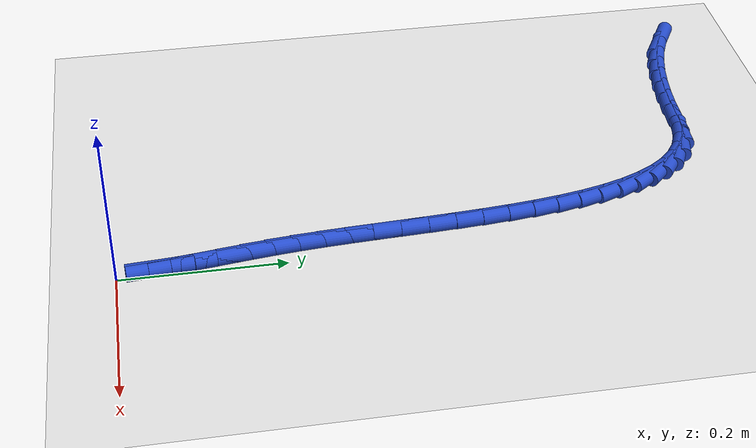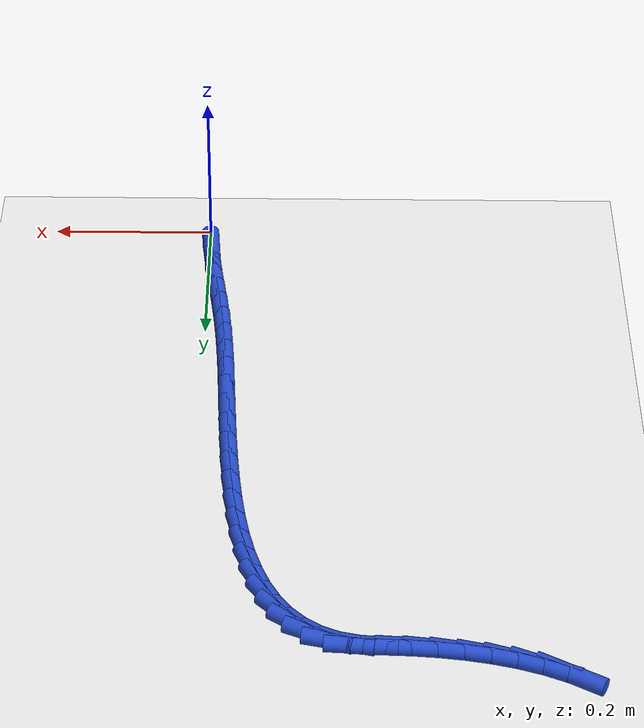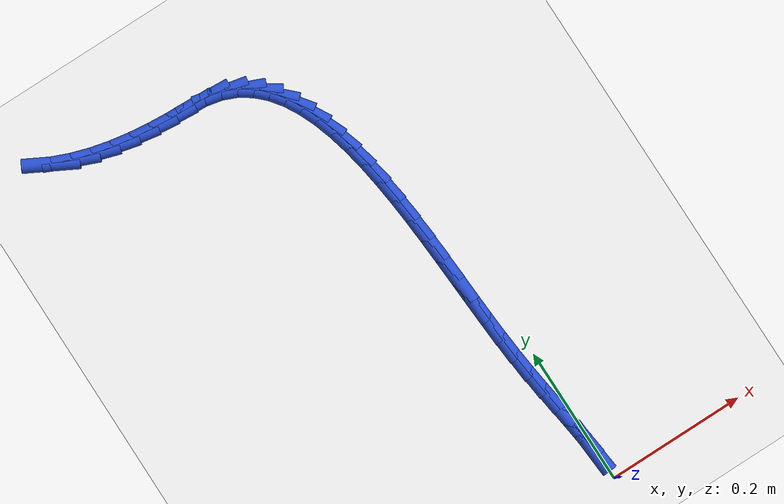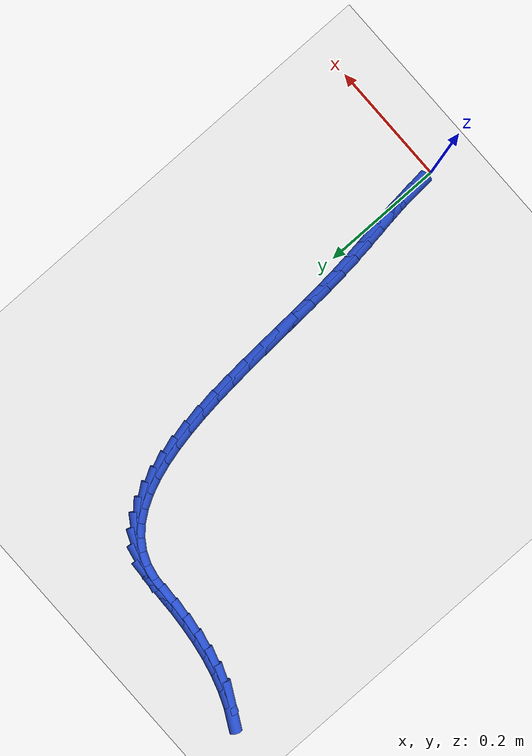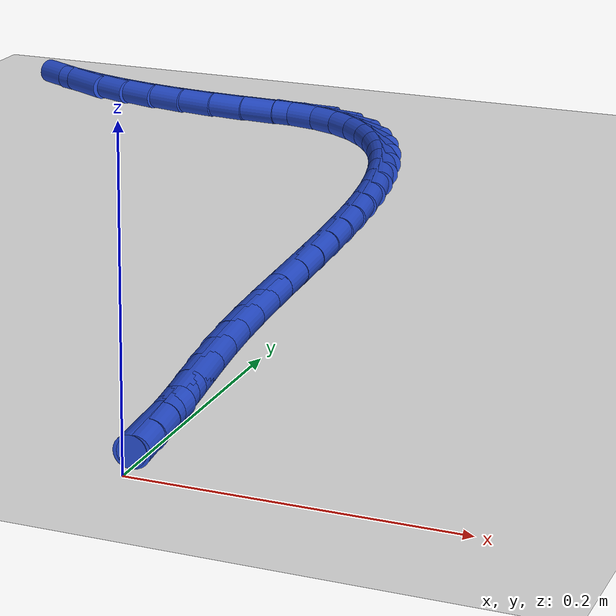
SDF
<sdf version="1.6">
 <world name="default">
  <model name="ground_plane">
   <static>1</static>
   <link name="link">
    <collision name="collision">
     <geometry><plane><normal>0 0 1</normal><size>100 100</size></plane></geometry>
     <surface><friction><ode><mu>100</mu><mu2>50</mu2></ode></friction></surface>
    </collision>
    <visual name="visual">
     <cast_shadows>0</cast_shadows>
     <geometry><plane><normal>0 0 1</normal><size>100 100</size></plane></geometry>
     <material>
      <script><uri>file://media/materials/scripts/gazebo.material</uri><name>Gazebo/WhiteGlow</name></script>
     </material>
    </visual>
   </link>
  </model>
  <model name="line">
   <link name="link_2">
    <pose>-0.0029428397312707944 0.051170829451481735 0.01 0 1.57 -1.4622567356824654</pose>
    <collision name="collision">
     <geometry><cylinder><radius>0.01</radius><length>0.08</length></cylinder></geometry>
    </collision>
    <visual name="visual">
     <material>
      <script><name>Gazebo/Blue</name><uri>file://media/materials/scripts/gazebo.material</uri></script>
     </material>
     <geometry><cylinder><radius>0.01</radius><length>0.08</length></cylinder></geometry>
    </visual>
   </link>
   <link name="link_3">
    <pose>-0.005736424107714438 0.0768076082786417 0.01 0 1.57 -1.4423001634129822</pose>
    <collision name="collision">
     <geometry><cylinder><radius>0.01</radius><length>0.08</length></cylinder></geometry>
    </collision>
    <visual name="visual">
     <material>
      <script><name>Gazebo/Blue</name><uri>file://media/materials/scripts/gazebo.material</uri></script>
     </material>
     <geometry><cylinder><radius>0.01</radius><length>0.08</length></cylinder></geometry>
    </visual>
   </link>
   <link name="link_4">
    <pose>-0.009090706431973608 0.10276792286182596 0.01 0 1.57 -1.4330216142800165</pose>
    <collision name="collision">
     <geometry><cylinder><radius>0.01</radius><length>0.08</length></cylinder></geometry>
    </collision>
    <visual name="visual">
     <material>
      <script><name>Gazebo/Blue</name><uri>file://media/materials/scripts/gazebo.material</uri></script>
     </material>
     <geometry><cylinder><radius>0.01</radius><length>0.08</length></cylinder></geometry>
    </visual>
   </link>
   <link name="link_5">
    <pose>-0.012765127909505838 0.12926874296734314 0.01 0 1.57 -1.4339376347425286</pose>
    <collision name="collision">
     <geometry><cylinder><radius>0.01</radius><length>0.08</length></cylinder></geometry>
    </collision>
    <visual name="visual">
     <material>
      <script><name>Gazebo/Blue</name><uri>file://media/materials/scripts/gazebo.material</uri></script>
     </material>
     <geometry><cylinder><radius>0.01</radius><length>0.08</length></cylinder></geometry>
    </visual>
   </link>
   <link name="link_6">
    <pose>-0.01651912974576864 0.15652703836150186 0.01 0 1.57 -1.4442123722095777</pose>
    <collision name="collision">
     <geometry><cylinder><radius>0.01</radius><length>0.08</length></cylinder></geometry>
    </collision>
    <visual name="visual">
     <material>
      <script><name>Gazebo/Blue</name><uri>file://media/materials/scripts/gazebo.material</uri></script>
     </material>
     <geometry><cylinder><radius>0.01</radius><length>0.08</length></cylinder></geometry>
    </visual>
   </link>
   <link name="link_7">
    <pose>-0.02011215314621956 0.1847597788106109 0.01 0 1.57 -1.4627538627626657</pose>
    <collision name="collision">
     <geometry><cylinder><radius>0.01</radius><length>0.08</length></cylinder></geometry>
    </collision>
    <visual name="visual">
     <material>
      <script><name>Gazebo/Blue</name><uri>file://media/materials/scripts/gazebo.material</uri></script>
     </material>
     <geometry><cylinder><radius>0.01</radius><length>0.08</length></cylinder></geometry>
    </visual>
   </link>
   <link name="link_8">
    <pose>-0.023303639316316117 0.21418393408097874 0.01 0 1.57 -1.4860196869104796</pose>
    <collision name="collision">
     <geometry><cylinder><radius>0.01</radius><length>0.08</length></cylinder></geometry>
    </collision>
    <visual name="visual">
     <material>
      <script><name>Gazebo/Blue</name><uri>file://media/materials/scripts/gazebo.material</uri></script>
     </material>
     <geometry><cylinder><radius>0.01</radius><length>0.08</length></cylinder></geometry>
    </visual>
   </link>
   <link name="link_9">
    <pose>-0.025917331742210545 0.24494037621948112 0.01 0 1.57 -1.503880707562586</pose>
    <collision name="collision">
     <geometry><cylinder><radius>0.01</radius><length>0.08</length></cylinder></geometry>
    </collision>
    <visual name="visual">
     <material>
      <script><name>Gazebo/Blue</name><uri>file://media/materials/scripts/gazebo.material</uri></script>
     </material>
     <geometry><cylinder><radius>0.01</radius><length>0.08</length></cylinder></geometry>
    </visual>
   </link>
   <link name="link_10">
    <pose>-0.028055157753665155 0.27684076412762615 0.01 0 1.57 -1.5147286217173899</pose>
    <collision name="collision">
     <geometry><cylinder><radius>0.01</radius><length>0.08</length></cylinder></geometry>
    </collision>
    <visual name="visual">
     <material>
      <script><name>Gazebo/Blue</name><uri>file://media/materials/scripts/gazebo.material</uri></script>
     </material>
     <geometry><cylinder><radius>0.01</radius><length>0.08</length></cylinder></geometry>
    </visual>
   </link>
   <link name="link_11">
    <pose>-0.02989425498056609 0.30960775003009056 0.01 0 1.57 -1.5193519140829248</pose>
    <collision name="collision">
     <geometry><cylinder><radius>0.01</radius><length>0.08</length></cylinder></geometry>
    </collision>
    <visual name="visual">
     <material>
      <script><name>Gazebo/Blue</name><uri>file://media/materials/scripts/gazebo.material</uri></script>
     </material>
     <geometry><cylinder><radius>0.01</radius><length>0.08</length></cylinder></geometry>
    </visual>
   </link>
   <link name="link_12">
    <pose>-0.03161176229347641 0.34296398468328787 0.01 0 1.57 -1.5181821880731876</pose>
    <collision name="collision">
     <geometry><cylinder><radius>0.01</radius><length>0.08</length></cylinder></geometry>
    </collision>
    <visual name="visual">
     <material>
      <script><name>Gazebo/Blue</name><uri>file://media/materials/scripts/gazebo.material</uri></script>
     </material>
     <geometry><cylinder><radius>0.01</radius><length>0.08</length></cylinder></geometry>
    </visual>
   </link>
   <link name="link_13">
    <pose>-0.03338481856295926 0.37663211884363157 0.01 0 1.57 -1.5113535500675843</pose>
    <collision name="collision">
     <geometry><cylinder><radius>0.01</radius><length>0.08</length></cylinder></geometry>
    </collision>
    <visual name="visual">
     <material>
      <script><name>Gazebo/Blue</name><uri>file://media/materials/scripts/gazebo.material</uri></script>
     </material>
     <geometry><cylinder><radius>0.01</radius><length>0.08</length></cylinder></geometry>
    </visual>
   </link>
   <link name="link_14">
    <pose>-0.03539056265957769 0.410334803267535 0.01 0 1.57 -1.4987283170580756</pose>
    <collision name="collision">
     <geometry><cylinder><radius>0.01</radius><length>0.08</length></cylinder></geometry>
    </collision>
    <visual name="visual">
     <material>
      <script><name>Gazebo/Blue</name><uri>file://media/materials/scripts/gazebo.material</uri></script>
     </material>
     <geometry><cylinder><radius>0.01</radius><length>0.08</length></cylinder></geometry>
    </visual>
   </link>
   <link name="link_15">
    <pose>-0.037806133453894816 0.443794688711412 0.01 0 1.57 -1.479895122322922</pose>
    <collision name="collision">
     <geometry><cylinder><radius>0.01</radius><length>0.08</length></cylinder></geometry>
    </collision>
    <visual name="visual">
     <material>
      <script><name>Gazebo/Blue</name><uri>file://media/materials/scripts/gazebo.material</uri></script>
     </material>
     <geometry><cylinder><radius>0.01</radius><length>0.08</length></cylinder></geometry>
    </visual>
   </link>
   <link name="link_16">
    <pose>-0.04080866981647373 0.47673442593167575 0.01 0 1.57 -1.4541417482149968</pose>
    <collision name="collision">
     <geometry><cylinder><radius>0.01</radius><length>0.08</length></cylinder></geometry>
    </collision>
    <visual name="visual">
     <material>
      <script><name>Gazebo/Blue</name><uri>file://media/materials/scripts/gazebo.material</uri></script>
     </material>
     <geometry><cylinder><radius>0.01</radius><length>0.08</length></cylinder></geometry>
    </visual>
   </link>
   <link name="link_17">
    <pose>-0.04457531061787749 0.5088766656847398 0.01 0 1.57 -1.4204027675378201</pose>
    <collision name="collision">
     <geometry><cylinder><radius>0.01</radius><length>0.08</length></cylinder></geometry>
    </collision>
    <visual name="visual">
     <material>
      <script><name>Gazebo/Blue</name><uri>file://media/materials/scripts/gazebo.material</uri></script>
     </material>
     <geometry><cylinder><radius>0.01</radius><length>0.08</length></cylinder></geometry>
    </visual>
   </link>
   <link name="link_18">
    <pose>-0.04928319472866926 0.5399440587270177 0.01 0 1.57 -1.3771822069479396</pose>
    <collision name="collision">
     <geometry><cylinder><radius>0.01</radius><length>0.08</length></cylinder></geometry>
    </collision>
    <visual name="visual">
     <material>
      <script><name>Gazebo/Blue</name><uri>file://media/materials/scripts/gazebo.material</uri></script>
     </material>
     <geometry><cylinder><radius>0.01</radius><length>0.08</length></cylinder></geometry>
    </visual>
   </link>
   <link name="link_19">
    <pose>-0.05510946101941204 0.5696592558149229 0.01 0 1.57 -1.3224568634582443</pose>
    <collision name="collision">
     <geometry><cylinder><radius>0.01</radius><length>0.08</length></cylinder></geometry>
    </collision>
    <visual name="visual">
     <material>
      <script><name>Gazebo/Blue</name><uri>file://media/materials/scripts/gazebo.material</uri></script>
     </material>
     <geometry><cylinder><radius>0.01</radius><length>0.08</length></cylinder></geometry>
    </visual>
   </link>
   <link name="link_20">
    <pose>-0.06223124836066901 0.597744907704869 0.01 0 1.57 -1.2535839301073037</pose>
    <collision name="collision">
     <geometry><cylinder><radius>0.01</radius><length>0.08</length></cylinder></geometry>
    </collision>
    <visual name="visual">
     <material>
      <script><name>Gazebo/Blue</name><uri>file://media/materials/scripts/gazebo.material</uri></script>
     </material>
     <geometry><cylinder><radius>0.01</radius><length>0.08</length></cylinder></geometry>
    </visual>
   </link>
   <link name="link_21">
    <pose>-0.07082569562300321 0.6239236651532694 0.01 0 1.57 -1.1672826308279138</pose>
    <collision name="collision">
     <geometry><cylinder><radius>0.01</radius><length>0.08</length></cylinder></geometry>
    </collision>
    <visual name="visual">
     <material>
      <script><name>Gazebo/Blue</name><uri>file://media/materials/scripts/gazebo.material</uri></script>
     </material>
     <geometry><cylinder><radius>0.01</radius><length>0.08</length></cylinder></geometry>
    </visual>
   </link>
   <link name="link_22">
    <pose>-0.08106994167697773 0.6479181789165372 0.01 0 1.57 -1.0598574289257567</pose>
    <collision name="collision">
     <geometry><cylinder><radius>0.01</radius><length>0.08</length></cylinder></geometry>
    </collision>
    <visual name="visual">
     <material>
      <script><name>Gazebo/Blue</name><uri>file://media/materials/scripts/gazebo.material</uri></script>
     </material>
     <geometry><cylinder><radius>0.01</radius><length>0.08</length></cylinder></geometry>
    </visual>
   </link>
   <link name="link_23">
    <pose>-0.09314112539315565 0.6694510997510864 0.01 0 1.57 -0.9279842623793714</pose>
    <collision name="collision">
     <geometry><cylinder><radius>0.01</radius><length>0.08</length></cylinder></geometry>
    </collision>
    <visual name="visual">
     <material>
      <script><name>Gazebo/Blue</name><uri>file://media/materials/scripts/gazebo.material</uri></script>
     </material>
     <geometry><cylinder><radius>0.01</radius><length>0.08</length></cylinder></geometry>
    </visual>
   </link>
   <link name="link_24">
    <pose>-0.10721638564210012 0.6882450784133305 0.01 0 1.57 -0.7704530948997941</pose>
    <collision name="collision">
     <geometry><cylinder><radius>0.01</radius><length>0.08</length></cylinder></geometry>
    </collision>
    <visual name="visual">
     <material>
      <script><name>Gazebo/Blue</name><uri>file://media/materials/scripts/gazebo.material</uri></script>
     </material>
     <geometry><cylinder><radius>0.01</radius><length>0.08</length></cylinder></geometry>
    </visual>
   </link>
   <link name="link_25">
    <pose>-0.12347286129437424 0.7040227656596825 0.01 0 1.57 -0.5907556320746858</pose>
    <collision name="collision">
     <geometry><cylinder><radius>0.01</radius><length>0.08</length></cylinder></geometry>
    </collision>
    <visual name="visual">
     <material>
      <script><name>Gazebo/Blue</name><uri>file://media/materials/scripts/gazebo.material</uri></script>
     </material>
     <geometry><cylinder><radius>0.01</radius><length>0.08</length></cylinder></geometry>
    </visual>
   </link>
   <link name="link_26">
    <pose>-0.14208769122054102 0.7165068122465565 0.01 0 1.57 -0.3988299362421815</pose>
    <collision name="collision">
     <geometry><cylinder><radius>0.01</radius><length>0.08</length></cylinder></geometry>
    </collision>
    <visual name="visual">
     <material>
      <script><name>Gazebo/Blue</name><uri>file://media/materials/scripts/gazebo.material</uri></script>
     </material>
     <geometry><cylinder><radius>0.01</radius><length>0.08</length></cylinder></geometry>
    </visual>
   </link>
   <link name="link_27">
    <pose>-0.16323801429116355 0.7254198689303655 0.01 0 1.57 -0.20913837554524453</pose>
    <collision name="collision">
     <geometry><cylinder><radius>0.01</radius><length>0.08</length></cylinder></geometry>
    </collision>
    <visual name="visual">
     <material>
      <script><name>Gazebo/Blue</name><uri>file://media/materials/scripts/gazebo.material</uri></script>
     </material>
     <geometry><cylinder><radius>0.01</radius><length>0.08</length></cylinder></geometry>
    </visual>
   </link>
   <link name="link_28">
    <pose>-0.18710096937680504 0.7304845864675231 0.01 0 1.57 -0.054265456200356436</pose>
    <collision name="collision">
     <geometry><cylinder><radius>0.01</radius><length>0.08</length></cylinder></geometry>
    </collision>
    <visual name="visual">
     <material>
      <script><name>Gazebo/Blue</name><uri>file://media/materials/scripts/gazebo.material</uri></script>
     </material>
     <geometry><cylinder><radius>0.01</radius><length>0.08</length></cylinder></geometry>
    </visual>
   </link>
   <link name="link_29">
    <pose>-0.21364387575481242 0.7319263648896545 0.01 0 1.57 -0.03545689825969489</pose>
    <collision name="collision">
     <geometry><cylinder><radius>0.01</radius><length>0.08</length></cylinder></geometry>
    </collision>
    <visual name="visual">
     <material>
      <script><name>Gazebo/Blue</name><uri>file://media/materials/scripts/gazebo.material</uri></script>
     </material>
     <geometry><cylinder><radius>0.01</radius><length>0.08</length></cylinder></geometry>
    </visual>
   </link>
   <link name="link_30">
    <pose>-0.24157583363481847 0.7329171607199467 0.01 0 1.57 -0.0735758046023805</pose>
    <collision name="collision">
     <geometry><cylinder><radius>0.01</radius><length>0.08</length></cylinder></geometry>
    </collision>
    <visual name="visual">
     <material>
      <script><name>Gazebo/Blue</name><uri>file://media/materials/scripts/gazebo.material</uri></script>
     </material>
     <geometry><cylinder><radius>0.01</radius><length>0.08</length></cylinder></geometry>
    </visual>
   </link>
   <link name="link_31">
    <pose>-0.2700633714432892 0.7350169445927937 0.01 0 1.57 -0.11848462058542499</pose>
    <collision name="collision">
     <geometry><cylinder><radius>0.01</radius><length>0.08</length></cylinder></geometry>
    </collision>
    <visual name="visual">
     <material>
      <script><name>Gazebo/Blue</name><uri>file://media/materials/scripts/gazebo.material</uri></script>
     </material>
     <geometry><cylinder><radius>0.01</radius><length>0.08</length></cylinder></geometry>
    </visual>
   </link>
   <link name="link_32">
    <pose>-0.2987401135043531 0.7384306871947485 0.01 0 1.57 -0.1711285519687538</pose>
    <collision name="collision">
     <geometry><cylinder><radius>0.01</radius><length>0.08</length></cylinder></geometry>
    </collision>
    <visual name="visual">
     <material>
      <script><name>Gazebo/Blue</name><uri>file://media/materials/scripts/gazebo.material</uri></script>
     </material>
     <geometry><cylinder><radius>0.01</radius><length>0.08</length></cylinder></geometry>
    </visual>
   </link>
   <link name="link_33">
    <pose>-0.32724209595021203 0.7433563671300867 0.01 0 1.57 -0.23298757715680704</pose>
    <collision name="collision">
     <geometry><cylinder><radius>0.01</radius><length>0.08</length></cylinder></geometry>
    </collision>
    <visual name="visual">
     <material>
      <script><name>Gazebo/Blue</name><uri>file://media/materials/scripts/gazebo.material</uri></script>
     </material>
     <geometry><cylinder><radius>0.01</radius><length>0.08</length></cylinder></geometry>
    </visual>
   </link>
   <link name="link_34">
    <pose>-0.35520535491306743 0.7499919630030832 0.01 0 1.57 -0.30581323466293264</pose>
    <collision name="collision">
     <geometry><cylinder><radius>0.01</radius><length>0.08</length></cylinder></geometry>
    </collision>
    <visual name="visual">
     <material>
      <script><name>Gazebo/Blue</name><uri>file://media/materials/scripts/gazebo.material</uri></script>
     </material>
     <geometry><cylinder><radius>0.01</radius><length>0.08</length></cylinder></geometry>
    </visual>
   </link>
   <link name="link_35">
    <pose>-0.3822659265251215 0.7585354534180133 0.01 0 1.57 -0.39154602620531154</pose>
    <collision name="collision">
     <geometry><cylinder><radius>0.01</radius><length>0.08</length></cylinder></geometry>
    </collision>
    <visual name="visual">
     <material>
      <script><name>Gazebo/Blue</name><uri>file://media/materials/scripts/gazebo.material</uri></script>
     </material>
     <geometry><cylinder><radius>0.01</radius><length>0.08</length></cylinder></geometry>
    </visual>
   </link>
   <link name="link_36">
    <pose>-0.40805984691857583 0.7691848169791523 0.01 0 1.57 -0.49208527793112045</pose>
    <collision name="collision">
     <geometry><cylinder><radius>0.01</radius><length>0.08</length></cylinder></geometry>
    </collision>
    <visual name="visual">
     <material>
      <script><name>Gazebo/Blue</name><uri>file://media/materials/scripts/gazebo.material</uri></script>
     </material>
     <geometry><cylinder><radius>0.01</radius><length>0.08</length></cylinder></geometry>
    </visual>
   </link>
   <link name="link_292">
    <pose>-0.0034975429898345366 0.050844521327822634 0.01 0 1.57 -1.502115536698459</pose>
    <collision name="collision">
     <geometry><cylinder><radius>0.01</radius><length>0.08</length></cylinder></geometry>
    </collision>
    <visual name="visual">
     <material>
      <script><name>Gazebo/Blue</name><uri>file://media/materials/scripts/gazebo.material</uri></script>
     </material>
     <geometry><cylinder><radius>0.01</radius><length>0.08</length></cylinder></geometry>
    </visual>
   </link>
  </model>
 </world>
</sdf>
